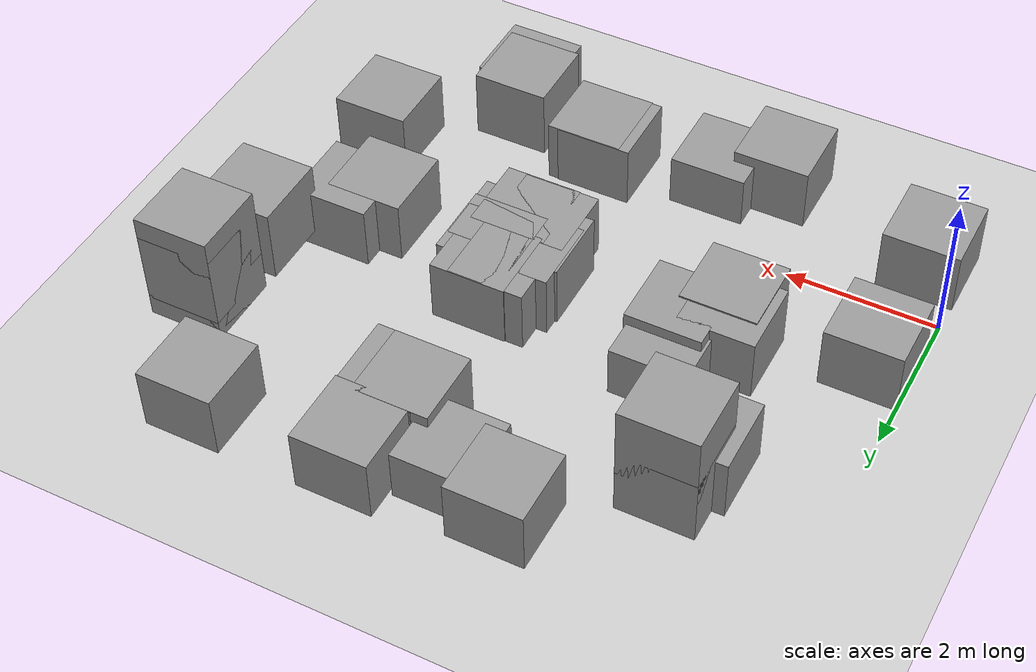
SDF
<sdf version='1.7'>
  <world name='default'>
    <light name='sun' type='directional'>
      <cast_shadows>1</cast_shadows>
      <pose>0 0 10 0 -0 0</pose>
      <diffuse>0.8 0.8 0.8 1</diffuse>
      <specular>0.2 0.2 0.2 1</specular>
      <attenuation>
        <range>1000</range>
        <constant>0.9</constant>
        <linear>0.01</linear>
        <quadratic>0.001</quadratic>
      </attenuation>
      <direction>-0.5 0.1 -0.9</direction>
      <spot>
        <inner_angle>0</inner_angle>
        <outer_angle>0</outer_angle>
        <falloff>0</falloff>
      </spot>
    </light>
    <model name='ground_plane'>
      <static>1</static>
      <link name='link'>
        <collision name='collision'>
          <geometry>
            <plane>
              <normal>0 0 1</normal>
              <size>100 100</size>
            </plane>
          </geometry>
          <surface>
            <contact>
              <collide_bitmask>65535</collide_bitmask>
              <ode/>
            </contact>
            <friction>
              <ode>
                <mu>100</mu>
                <mu2>50</mu2>
              </ode>
              <torsional>
                <ode/>
              </torsional>
            </friction>
            <bounce/>
          </surface>
          <max_contacts>10</max_contacts>
        </collision>
        <visual name='visual'>
          <cast_shadows>0</cast_shadows>
          <geometry>
            <plane>
              <normal>0 0 1</normal>
              <size>100 100</size>
            </plane>
          </geometry>
          <material>
            <script>
              <uri>file://media/materials/scripts/gazebo.material</uri>
              <name>Gazebo/Grey</name>
            </script>
          </material>
        </visual>
        <self_collide>0</self_collide>
        <enable_wind>0</enable_wind>
        <kinematic>0</kinematic>
      </link>
    </model>
    <gravity>0 0 -9.8</gravity>
    <magnetic_field>6e-06 2.3e-05 -4.2e-05</magnetic_field>
    <atmosphere type='adiabatic'/>
    <physics type='ode'>
      <max_step_size>0.001</max_step_size>
      <real_time_factor>1</real_time_factor>
      <real_time_update_rate>1000</real_time_update_rate>
    </physics>
    <scene>
      <ambient>0.4 0.4 0.4 1</ambient>
      <background>0.7 0.7 0.7 1</background>
      <shadows>1</shadows>
    </scene>
    <wind/>
    <spherical_coordinates>
      <surface_model>EARTH_WGS84</surface_model>
      <latitude_deg>0</latitude_deg>
      <longitude_deg>0</longitude_deg>
      <elevation>0</elevation>
      <heading_deg>0</heading_deg>
    </spherical_coordinates>
    <gui fullscreen='0'>
      <camera name='user_camera'>
        <pose>-2.70813 5.70495 19.0216 2e-06 1.5418 -1.5749</pose>
        <view_controller>orbit</view_controller>
        <projection_type>perspective</projection_type>
      </camera>
    </gui>
    <include>
      <uri>model://unit_box</uri>
      <name>sink</name>
      <pose>6.22500 -1.14500 0.44000 0 0 3.1415926536</pose>
      <scale>1.13 0.56 0.88</scale>
    </include>
<include>
      <uri>model://unit_box</uri>
      <name>sofa</name>
      <pose>2.63500 2.22250 0.20000 0 0 -3.1415926536</pose>
      <scale>1.78 0.86 0.40</scale>
    </include>
<include>
      <uri>model://unit_box</uri>
      <name>living_table</name>
      <pose>4.10750 4.71000 0.20000 0 0 0</pose>
      <scale>1.14 0.81 0.40</scale>
    </include>
<include>
      <uri>model://unit_box</uri>
      <name>cabinet_0</name>
      <pose>8.16250 3.59500 0.05000 0 0 -1.5707963268</pose>
      <scale>0.75 0.28 0.10</scale>
    </include>
<include>
      <uri>model://unit_box</uri>
      <name>cabinet_1</name>
      <pose>8.16250 3.59500 0.47000 0 0 -1.5707963268</pose>
      <scale>0.75 0.28 0.02</scale>
    </include>
<include>
      <uri>model://unit_box</uri>
      <name>cabinet_2</name>
      <pose>8.16250 3.59500 0.76000 0 0 -1.5707963268</pose>
      <scale>0.75 0.28 0.02</scale>
    </include>
<include>
      <uri>model://unit_box</uri>
      <name>cabinet_3</name>
      <pose>8.16250 3.59500 1.06000 0 0 -1.5707963268</pose>
      <scale>0.75 0.28 0.04</scale>
    </include>
<include>
      <uri>model://unit_box</uri>
      <name>shelf_0</name>
      <pose>1.81250 3.73750 0.41000 0 0 1.5707963268</pose>
      <scale>0.86 0.36 0.82</scale>
    </include>
<include>
      <uri>model://unit_box</uri>
      <name>shelf_1</name>
      <pose>1.81250 3.73750 1.10500 0 0 1.5707963268</pose>
      <scale>0.86 0.36 0.01</scale>
    </include>
<include>
      <uri>model://unit_box</uri>
      <name>dining_table</name>
      <pose>7.99500 2.59000 0.73000 0 0 -1.5707963268</pose>
      <scale>0.95 0.51 0.02</scale>
    </include>
<include>
      <uri>model://unit_box</uri>
      <name>laundry_table</name>
      <pose>2.21500 1.20250 0.37000 0 0 0</pose>
      <scale>1.10 0.66 0.74</scale>
    </include>
<include>
      <uri>model://unit_box</uri>
      <name>washing_machine</name>
      <pose>3.37000 -1.08250 0.20000 0 0 3.1415926536</pose>
      <scale>0.60 0.58 0.40</scale>
    </include>
<include>
      <uri>model://unit_box</uri>
      <name>dining_wall_0_</name>
      <pose>5.13829 4.17360 0.35000 0 0 -1.5707963268</pose>
      <scale>1.81 0.10 0.70</scale>
    </include>
<include>
      <uri>model://unit_box</uri>
      <name>dining_wall_1_</name>
      <pose>5.18648 1.73768 0.35000 0 0 0</pose>
      <scale>0.21 0.10 0.70</scale>
    </include>
<include>
      <uri>model://unit_box</uri>
      <name>dining_wall_2_</name>
      <pose>8.30500 3.38500 0.35000 0 0 1.5707963268</pose>
      <scale>3.43 0.10 0.70</scale>
    </include>
<include>
      <uri>model://unit_box</uri>
      <name>dining_wall_3_</name>
      <pose>7.19536 5.09288 0.35000 0 0 -3.1415926536</pose>
      <scale>2.25 0.10 0.70</scale>
    </include>
<include>
      <uri>model://unit_box</uri>
      <name>dining_wall_4_</name>
      <pose>5.16000 5.08000 0.35000 0 0 0</pose>
      <scale>0.00 0.10 0.70</scale>
    </include>
<include>
      <uri>model://unit_box</uri>
      <name>dining_wall_5_</name>
      <pose>5.08798 2.07301 0.35000 0 0 -1.5707963268</pose>
      <scale>0.67 0.10 0.70</scale>
    </include>
<include>
      <uri>model://unit_box</uri>
      <name>dining_wall_6_</name>
      <pose>7.23170 1.69308 0.35000 0 0 0</pose>
      <scale>2.12 0.10 0.70</scale>
    </include>
<include>
      <uri>model://unit_box</uri>
      <name>living_wall_0_</name>
      <pose>4.91326 4.17169 0.35000 0 0 -1.5707963268</pose>
      <scale>1.80 0.10 0.70</scale>
    </include>
<include>
      <uri>model://unit_box</uri>
      <name>living_wall_1_</name>
      <pose>4.70598 1.71251 0.35000 0 0 3.1415926536</pose>
      <scale>0.27 0.10 0.70</scale>
    </include>
<include>
      <uri>model://unit_box</uri>
      <name>living_wall_2_</name>
      <pose>1.65500 3.28500 0.35000 0 0 1.5707963268</pose>
      <scale>3.03 0.10 0.70</scale>
    </include>
<include>
      <uri>model://unit_box</uri>
      <name>living_wall_3_</name>
      <pose>3.30500 4.93500 0.35000 0 0 0</pose>
      <scale>3.28 0.10 0.70</scale>
    </include>
<include>
      <uri>model://unit_box</uri>
      <name>living_wall_4_</name>
      <pose>4.85045 2.06103 0.35000 0 0 -1.5707963268</pose>
      <scale>0.70 0.10 0.70</scale>
    </include>
<include>
      <uri>model://unit_box</uri>
      <name>living_wall_5_</name>
      <pose>2.67104 1.75067 0.35000 0 0 3.1415926536</pose>
      <scale>2.06 0.10 0.70</scale>
    </include>
<include>
      <uri>model://unit_box</uri>
      <name>kitchen_wall_0_</name>
      <pose>5.04679 1.13284 0.35000 0 0 -1.5707963268</pose>
      <scale>0.69 0.10 0.70</scale>
    </include>
<include>
      <uri>model://unit_box</uri>
      <name>kitchen_wall_1_</name>
      <pose>6.32000 -1.41000 0.35000 0 0 0</pose>
      <scale>2.74 0.10 0.70</scale>
    </include>
<include>
      <uri>model://unit_box</uri>
      <name>kitchen_wall_2_</name>
      <pose>7.67000 -0.01000 0.35000 0 0 1.5707963268</pose>
      <scale>2.80 0.10 0.70</scale>
    </include>
<include>
      <uri>model://unit_box</uri>
      <name>kitchen_wall_3_</name>
      <pose>6.90794 1.41579 0.35000 0 0 3.1415926536</pose>
      <scale>1.49 0.10 0.70</scale>
    </include>
<include>
      <uri>model://unit_box</uri>
      <name>kitchen_wall_4_</name>
      <pose>5.17278 1.47608 0.35000 0 0 3.1415926536</pose>
      <scale>0.23 0.10 0.70</scale>
    </include>
<include>
      <uri>model://unit_box</uri>
      <name>kitchen_wall_5_</name>
      <pose>4.97351 -0.79242 0.35000 0 0 -1.5707963268</pose>
      <scale>1.24 0.10 0.70</scale>
    </include>
<include>
      <uri>model://unit_box</uri>
      <name>laundry_room_wall_0_</name>
      <pose>4.78863 1.14351 0.35000 0 0 -1.5707963268</pose>
      <scale>0.71 0.10 0.70</scale>
    </include>
<include>
      <uri>model://unit_box</uri>
      <name>laundry_room_wall_1_</name>
      <pose>2.65000 -1.41000 0.35000 0 0 -3.1415926536</pose>
      <scale>4.40 0.10 0.70</scale>
    </include>
<include>
      <uri>model://unit_box</uri>
      <name>laundry_room_wall_2_</name>
      <pose>0.45939 -0.87024 0.35000 0 0 1.5707963268</pose>
      <scale>1.12 0.10 0.70</scale>
    </include>
<include>
      <uri>model://unit_box</uri>
      <name>laundry_room_wall_3_</name>
      <pose>2.09937 1.53132 0.35000 0 0 0</pose>
      <scale>3.20 0.10 0.70</scale>
    </include>
<include>
      <uri>model://unit_box</uri>
      <name>laundry_room_wall_4_</name>
      <pose>4.83524 -0.78060 0.35000 0 0 -1.5707963268</pose>
      <scale>1.22 0.10 0.70</scale>
    </include>
<include>
      <uri>model://unit_box</uri>
      <name>laundry_room_wall_5_</name>
      <pose>4.67437 1.50123 0.35000 0 0 0</pose>
      <scale>0.21 0.10 0.70</scale>
    </include>
<include>
      <uri>model://unit_box</uri>
      <name>laundry_room_wall_6_</name>
      <pose>0.49009 0.95950 0.35000 0 0 1.5707963268</pose>
      <scale>1.18 0.10 0.70</scale>
    </include>
  </world>
</sdf>

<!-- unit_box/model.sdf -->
<sdf version='1.7'>
  <model name='unit_box'>
    <link name='link'>
      <inertial>
        <mass>1</mass>
        <inertia>
          <ixx>0.166667</ixx>
          <ixy>0</ixy>
          <ixz>0</ixz>
          <iyy>0.166667</iyy>
          <iyz>0</iyz>
          <izz>0.166667</izz>
        </inertia>
        <pose>0 0 0 0 -0 0</pose>
      </inertial>
      <self_collide>0</self_collide>
      <enable_wind>0</enable_wind>
      <pose>0 0 0 0 -0 0</pose>
      <gravity>1</gravity>
      <kinematic>0</kinematic>
      <visual name='visual'>
        <geometry>
          <box>
            <size>1 1 1</size>
          </box>
        </geometry>
        <material>
          <script>
            <name>Gazebo/Grey</name>
            <uri>file://media/materials/scripts/gazebo.material</uri>
          </script>
          <shader type='pixel'>
            <normal_map>__default__</normal_map>
          </shader>
          <ambient>0.8 0.8 0.8 1</ambient>
          <diffuse>0.7 0.7 0.7 1</diffuse>
          <specular>0.01 0.01 0.01 1</specular>
          <emissive>0 0 0 1</emissive>
        </material>
        <pose>0 0 0 0 -0 0</pose>
        <transparency>0</transparency>
        <cast_shadows>1</cast_shadows>
      </visual>
      <collision name='collision'>
        <laser_retro>0</laser_retro>
        <max_contacts>10</max_contacts>
        <pose>0 0 0 0 -0 0</pose>
        <geometry>
          <box>
            <size>1 1 1</size>
          </box>
        </geometry>
        <surface>
          <friction>
            <ode>
              <mu>1</mu>
              <mu2>1</mu2>
              <fdir1>0 0 0</fdir1>
              <slip1>0</slip1>
              <slip2>0</slip2>
            </ode>
            <torsional>
              <coefficient>1</coefficient>
              <patch_radius>0</patch_radius>
              <surface_radius>0</surface_radius>
              <use_patch_radius>1</use_patch_radius>
              <ode>
                <slip>0</slip>
              </ode>
            </torsional>
          </friction>
          <bounce>
            <restitution_coefficient>0</restitution_coefficient>
            <threshold>1e+06</threshold>
          </bounce>
          <contact>
            <collide_without_contact>0</collide_without_contact>
            <collide_without_contact_bitmask>1</collide_without_contact_bitmask>
            <collide_bitmask>1</collide_bitmask>
            <ode>
              <soft_cfm>0</soft_cfm>
              <soft_erp>0.2</soft_erp>
              <kp>1e+13</kp>
              <kd>1</kd>
              <max_vel>0.01</max_vel>
              <min_depth>0</min_depth>
            </ode>
            <bullet>
              <split_impulse>1</split_impulse>
              <split_impulse_penetration_threshold>-0.01</split_impulse_penetration_threshold>
              <soft_cfm>0</soft_cfm>
              <soft_erp>0.2</soft_erp>
              <kp>1e+13</kp>
              <kd>1</kd>
            </bullet>
          </contact>
        </surface>
      </collision>
    </link>
    <static>0</static>
    <allow_auto_disable>1</allow_auto_disable>
  </model>
</sdf>
